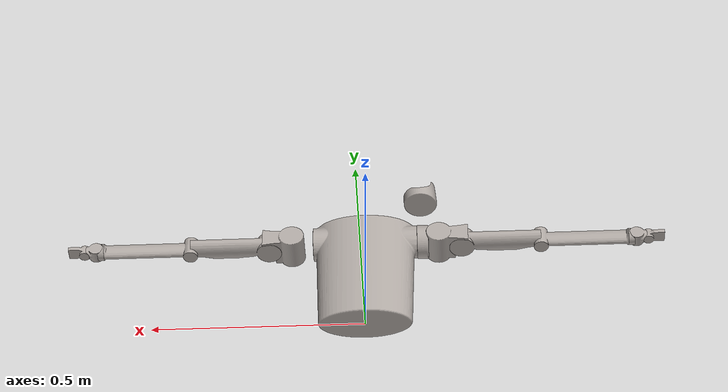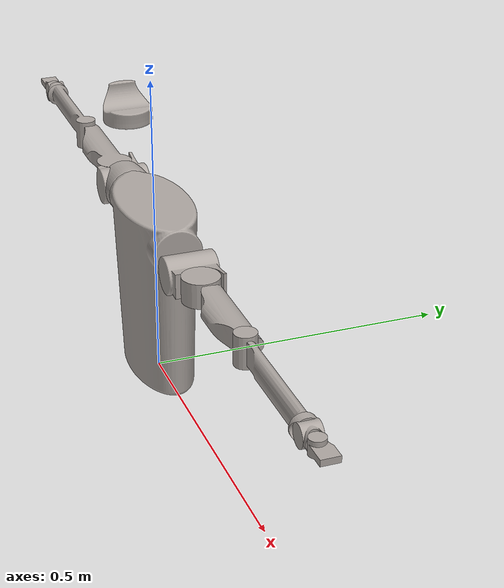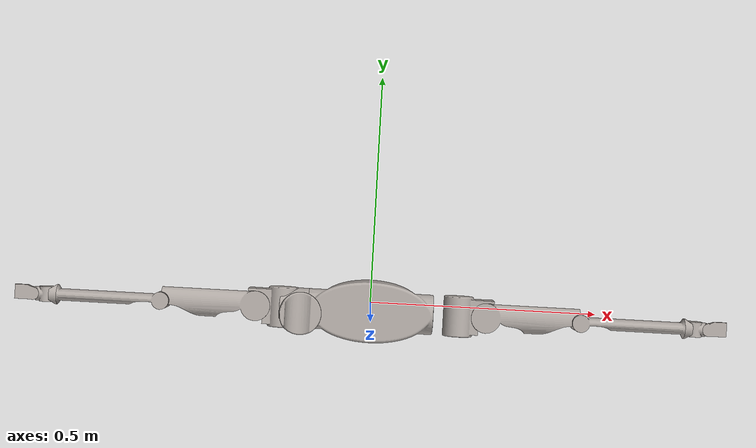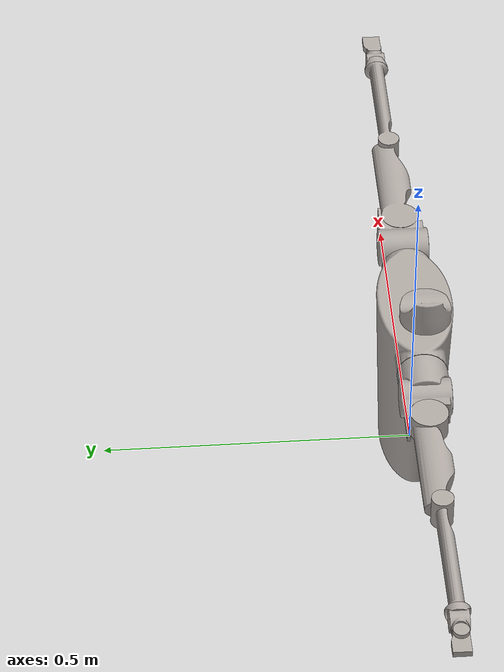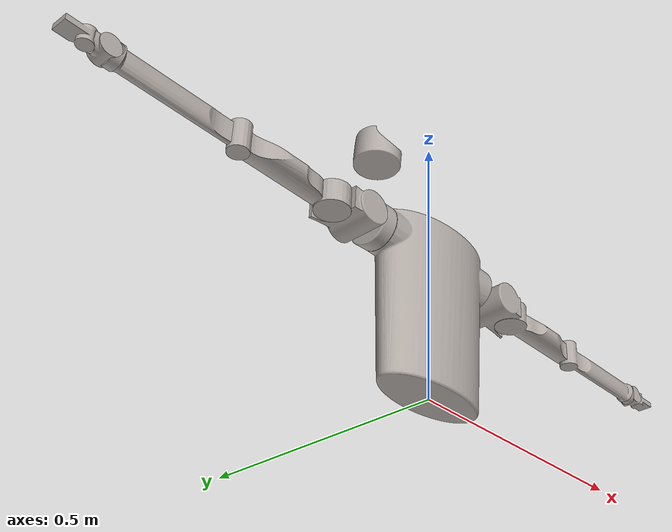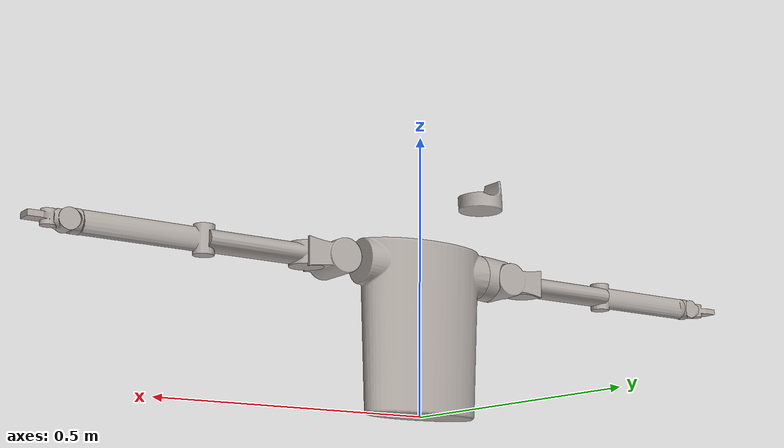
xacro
<?xml version="1.0"?>
<robot name="lita_converted" xmlns:xacro="http://www.ros.org/wiki/xacro">

  <!--fix the upper_body_link-->
  <link name="world"/>

  <joint name="fixed" type="fixed">
    <parent link="world"/>
    <child link="upper_body_link"/>
  </joint>

  <!--This is the robot describtion-->
  <link name="upper_body_link">
    <inertial>
      <origin xyz="-4.3975E-06 -1.1609E-08 0.15913" rpy="0 0 0" />
      <mass value="26.766" />
      <inertia
        ixx="10" ixy="10" ixz="10"
        iyy="10" iyz="10"
        izz="10" />
    </inertial>

    <visual>
      <origin xyz="0 0 0" rpy="0 0 0" />
      <geometry>
        <mesh filename="package://lita_converted/meshes/upper_body_link.STL" />
      </geometry>
      <material name="">
        <color rgba="0.68627 0.65882 0.63922 1" />
      </material>
    </visual>

    <collision>
      <origin xyz="0 0 0" rpy="0 0 0" />
      <geometry>
        <mesh filename="package://lita_converted/meshes/upper_body_link.STL" />
      </geometry>
    </collision>
  </link>

  <joint name="l_shoulder_roll" type="continuous">
    <origin xyz="0.125 0 0.26" rpy="0 -1.5708 0" />
    <parent link="upper_body_link" />
    <child link="l_shoulder_roll_link" />
    <axis xyz="0 0 -1" />
    <dynamics damping="0.7" />
  </joint>

  <link name="l_shoulder_roll_link">
    <inertial>
      <origin xyz="0.0033683 -7.6367E-09 -0.015946" rpy="0 0 0" />
      <mass value="0.63417" />
      <inertia
        ixx="0.000315"
        ixy="0"
        ixz="-5.2E-05"
        iyy="0.000373"
        iyz="0"
        izz="0.000525" />
    </inertial>

    <visual>
      <origin xyz="0.125 0 0.26" rpy="0 -1.5708 0" />
      <geometry>
        <mesh
          filename="package://lita_converted/meshes/l_shoulder_roll_link.STL" />
      </geometry>
      <material name="">
        <color rgba="0.68627 0.65882 0.63922 1" />
      </material>
    </visual>

    <collision>
      <origin xyz="0.125 0 0.26" rpy="0 -1.5708 0" />
      <geometry>
        <mesh
          filename="package://lita_converted/meshes/l_shoulder_roll_link.STL" />
      </geometry>
    </collision>
  </link>

  <link
    name="l_shoulder_pitch_link">
    <inertial>
      <origin
        xyz="0.0032993 5.9585E-10 -0.00098089"
        rpy="0 0 0" />
      <mass
        value="1.0724" />
      <inertia
        ixx="0.000841"
        ixy="0"
        ixz="-5.4E-05"
        iyy="0.000973"
        iyz="0"
        izz="0.000606" />
    </inertial>
    <visual>
      <origin
        xyz="0 0 0"
        rpy="0 0 0" />
      <geometry>
        <mesh
          filename="package://lita_converted/meshes/l_shoulder_pitch_link.STL" />
      </geometry>
      <material
        name="">
        <color
          rgba="0.68627 0.65882 0.63922 1" />
      </material>
    </visual>
    <collision>
      <origin
        xyz="0 0 0"
        rpy="0 0 0" />
      <geometry>
        <mesh
          filename="package://lita_converted/meshes/l_shoulder_pitch_link.STL" />
      </geometry>
    </collision>
  </link>
  <joint
    name="l_shoulder_pitch"
    type="revolute">
    <origin
      xyz="-0.0037133 0 -0.052049"
      rpy="1.5708 1.5708 0" />
    <parent
      link="l_shoulder_roll_link" />
    <child
      link="l_shoulder_pitch_link" />
    <axis
      xyz="0 0 -1" />
    <limit
      lower="-0.6981"
      upper="1.7104"
      effort="50000"
      velocity="500" />
    <calibration
      rising="1" />
    <dynamics
      damping="0.1"
      friction="0.1" />
    <safety_controller
      soft_upper="1.7"
      soft_lower="-0.69"
      k_position="1"
      k_velocity="1" />
  </joint>
  <link
    name="l_shoulder_yaw_link">
    <inertial>
      <origin
        xyz="0.065121 -0.0020967 1.7569E-07"
        rpy="0 0 0" />
      <mass
        value="1.3826" />
      <inertia
        ixx="0.000398"
        ixy="-0.000132"
        ixz="0"
        iyy="0.005026"
        iyz="0"
        izz="0.005143" />
    </inertial>
    <visual>
      <origin
        xyz="0 0 0"
        rpy="0 0 0" />
      <geometry>
        <mesh
          filename="package://lita_converted/meshes/l_shoulder_yaw_link.STL" />
      </geometry>
      <material
        name="">
        <color
          rgba="0.68627 0.65882 0.63922 1" />
      </material>
    </visual>
    <collision>
      <origin
        xyz="0 0 0"
        rpy="0 0 0" />
      <geometry>
        <mesh
          filename="package://lita_converted/meshes/l_shoulder_yaw_link.STL" />
      </geometry>
    </collision>
  </link>
  <joint
    name="l_shoulder_yaw"
    type="revolute">
    <origin
      xyz="0.055 0 0"
      rpy="1.5708 -4.1633E-17 -2.6021E-18" />
    <parent
      link="l_shoulder_pitch_link" />
    <child
      link="l_shoulder_yaw_link" />
    <axis
      xyz="0 0 1" />
    <limit
      lower="-0.1396"
      upper="1.6231"
      effort="50000"
      velocity="500" />
    <calibration
      rising="1" />
    <dynamics
      damping="0.1"
      friction="0.1" />
    <safety_controller
      soft_upper="1.61"
      soft_lower="-0.13"
      k_position="1"
      k_velocity="1" />
  </joint>
  <link
    name="l_elbow_link">
    <inertial>
      <origin
        xyz="0.088184 -0.0003499 -1.9687E-07"
        rpy="0 0 0" />
      <mass
        value="0.81599" />
      <inertia
        ixx="0.000143"
        ixy="1.5E-05"
        ixz="0"
        iyy="0.004114"
        iyz="0"
        izz="0.004046" />
    </inertial>
    <visual>
      <origin
        xyz="0 0 0"
        rpy="0 0 0" />
      <geometry>
        <mesh
          filename="package://lita_converted/meshes/l_elbow_link.STL" />
      </geometry>
      <material
        name="">
        <color
          rgba="0.68627 0.65882 0.63922 1" />
      </material>
    </visual>
    <collision>
      <origin
        xyz="0 0 0"
        rpy="0 0 0" />
      <geometry>
        <mesh
          filename="package://lita_converted/meshes/l_elbow_link.STL" />
      </geometry>
    </collision>
  </link>
  <joint
    name="l_elbow"
    type="revolute">
    <origin
      xyz="0.1903 0 0"
      rpy="-4.2858E-16 9.6277E-17 -4.1263E-32" />
    <parent
      link="l_shoulder_yaw_link" />
    <child
      link="l_elbow_link" />
    <axis
      xyz="0 0 1" />
    <limit
      lower="-0.7853"
      upper="2.4085"
      effort="50000"
      velocity="500" />
    <calibration
      rising="1" />
    <dynamics
      damping="0.1"
      friction="0.1" />
    <safety_controller
      soft_upper="2.4"
      soft_lower="-0.78"
      k_position="1"
      k_velocity="1" />
  </joint>
  <link
    name="l_wrist_roll_link">
    <inertial>
      <origin
        xyz="-1.4822E-09 1.5222E-08 -0.0042713"
        rpy="0 0 0" />
      <mass
        value="0.033212" />
      <inertia
        ixx="3E-06"
        ixy="0"
        ixz="0"
        iyy="6E-06"
        iyz="0"
        izz="8E-06" />
    </inertial>
    <visual>
      <origin
        xyz="0 0 0"
        rpy="0 0 0" />
      <geometry>
        <mesh
          filename="package://lita_converted/meshes/l_wrist_roll_link.STL" />
      </geometry>
      <material
        name="">
        <color
          rgba="0.68627 0.65882 0.63922 1" />
      </material>
    </visual>
    <collision>
      <origin
        xyz="0 0 0"
        rpy="0 0 0" />
      <geometry>
        <mesh
          filename="package://lita_converted/meshes/l_wrist_roll_link.STL" />
      </geometry>
    </collision>
  </link>
  <joint
    name="l_wrist_roll"
    type="continuous">
    <origin
      xyz="0.21 0 0"
      rpy="3.1416 1.5708 0" />
    <parent
      link="l_elbow_link" />
    <child
      link="l_wrist_roll_link" />
    <axis
      xyz="0 0 -1" />
    <limit
      effort="50000"
      velocity="500" />
    <calibration
      rising="1" />
    <dynamics
      damping="0.1"
      friction="0.1" />
    <safety_controller
      k_velocity="1" />
  </joint>
  <link
    name="l_wrist_pitch_link">
    <inertial>
      <origin
        xyz="0.0009785 -2.8101E-08 -1.4985E-08"
        rpy="0 0 0" />
      <mass
        value="0.13385" />
      <inertia
        ixx="2.1E-05"
        ixy="0"
        ixz="0"
        iyy="2.2E-05"
        iyz="0"
        izz="2.2E-05" />
    </inertial>
    <visual>
      <origin
        xyz="0 0 0"
        rpy="0 0 0" />
      <geometry>
        <mesh
          filename="package://lita_converted/meshes/l_wrist_pitch_link.STL" />
      </geometry>
      <material
        name="">
        <color
          rgba="0.68627 0.65882 0.63922 1" />
      </material>
    </visual>
    <collision>
      <origin
        xyz="0 0 0"
        rpy="0 0 0" />
      <geometry>
        <mesh
          filename="package://lita_converted/meshes/l_wrist_pitch_link.STL" />
      </geometry>
    </collision>
  </link>
  <joint
    name="l_wrist_pitch"
    type="revolute">
    <origin
      xyz="0 0 -0.02"
      rpy="1.5708 1.5708 0" />
    <parent
      link="l_wrist_roll_link" />
    <child
      link="l_wrist_pitch_link" />
    <axis
      xyz="0 0 -1" />
    <limit
      lower="-0.6981"
      upper="0.6981"
      effort="50000"
      velocity="500" />
    <calibration
      rising="1" />
    <dynamics
      damping="0.1"
      friction="0.1" />
    <safety_controller
      soft_upper="0.69"
      soft_lower="-0.69"
      k_position="1"
      k_velocity="1" />
  </joint>
  <link
    name="l_wrist_yaw_link">
    <inertial>
      <origin
        xyz="0.0096828 -0.0007914 2.2204E-16"
        rpy="0 0 0" />
      <mass
        value="0.089949" />
      <inertia
        ixx="8E-06"
        ixy="-1E-06"
        ixz="0"
        iyy="2E-05"
        iyz="0"
        izz="2.2E-05" />
    </inertial>
    <visual>
      <origin
        xyz="0 0 0"
        rpy="0 0 0" />
      <geometry>
        <mesh
          filename="package://lita_converted/meshes/l_wrist_yaw_link.STL" />
      </geometry>
      <material
        name="">
        <color
          rgba="0.68627 0.65882 0.63922 1" />
      </material>
    </visual>
    <collision>
      <origin
        xyz="0 0 0"
        rpy="0 0 0" />
      <geometry>
        <mesh
          filename="package://lita_converted/meshes/l_wrist_yaw_link.STL" />
      </geometry>
    </collision>
  </link>
  <joint
    name="l_wrist_yaw"
    type="revolute">
    <origin
      xyz="0.028 0 0"
      rpy="1.5708 -1.0276E-16 -6.9285E-31" />
    <parent
      link="l_wrist_pitch_link" />
    <child
      link="l_wrist_yaw_link" />
    <axis
      xyz="0 0 1" />
    <limit
      lower="-0.3141"
      upper="0.3141"
      effort="50000"
      velocity="500" />
    <calibration
      rising="1" />
    <dynamics
      damping="0.1"
      friction="0.1" />
    <safety_controller
      soft_upper="0.31"
      soft_lower="-0.31"
      k_position="1"
      k_velocity="1" />
  </joint>
  <link
    name="r_shoulder_roll_link">
    <inertial>
      <origin
        xyz="0.0033683 7.6367E-09 0.015946"
        rpy="0 0 0" />
      <mass
        value="0.63417" />
      <inertia
        ixx="0.000315"
        ixy="0"
        ixz="5.2E-05"
        iyy="0.000373"
        iyz="0"
        izz="0.000525" />
    </inertial>
    <visual>
      <origin
        xyz="0 0 0"
        rpy="0 0 0" />
      <geometry>
        <mesh
          filename="package://lita_converted/meshes/r_shoulder_roll_link.STL" />
      </geometry>
      <material
        name="">
        <color
          rgba="0.68627 0.65882 0.63922 1" />
      </material>
    </visual>
    <collision>
      <origin
        xyz="0 0 0"
        rpy="0 0 0" />
      <geometry>
        <mesh
          filename="package://lita_converted/meshes/r_shoulder_roll_link.STL" />
      </geometry>
    </collision>
  </link>
  <joint
    name="r_shoulder_roll"
    type="continuous">
    <origin
      xyz="-0.125 0 0.26"
      rpy="0 -1.5708 0" />
    <parent
      link="upper_body_link" />
    <child
      link="r_shoulder_roll_link" />
    <axis
      xyz="0 0 -1" />
    <limit
      effort="50000"
      velocity="500" />
    <calibration
      rising="1" />
    <dynamics
      damping="0.1"
      friction="0.1" />
    <safety_controller
      k_velocity="1" />
  </joint>
  <link
    name="r_shoulder_pitch_link">
    <inertial>
      <origin
        xyz="0.0032993 -5.9585E-10 0.00098089"
        rpy="0 0 0" />
      <mass
        value="1.0724" />
      <inertia
        ixx="0.000841"
        ixy="0"
        ixz="5.4E-05"
        iyy="0.000973"
        iyz="0"
        izz="0.000606" />
    </inertial>
    <visual>
      <origin
        xyz="0 0 0"
        rpy="0 0 0" />
      <geometry>
        <mesh
          filename="package://lita_converted/meshes/r_shoulder_pitch_link.STL" />
      </geometry>
      <material
        name="">
        <color
          rgba="0.68627 0.65882 0.63922 1" />
      </material>
    </visual>
    <collision>
      <origin
        xyz="0 0 0"
        rpy="0 0 0" />
      <geometry>
        <mesh
          filename="package://lita_converted/meshes/r_shoulder_pitch_link.STL" />
      </geometry>
    </collision>
  </link>
  <joint
    name="r_shoulder_pitch"
    type="revolute">
    <origin
      xyz="-0.0037133 0 0.052049"
      rpy="-1.5708 -1.5708 0" />
    <parent
      link="r_shoulder_roll_link" />
    <child
      link="r_shoulder_pitch_link" />
    <axis
      xyz="0 0 -1" />
    <limit
      lower="-0.6981"
      upper="1.7104"
      effort="50000"
      velocity="500" />
    <calibration
      rising="1" />
    <dynamics
      damping="0.1"
      friction="0.1" />
    <safety_controller
      soft_upper="1.7"
      soft_lower="-0.69"
      k_position="1"
      k_velocity="1" />
  </joint>
  <link
    name="r_shoulder_yaw_link">
    <inertial>
      <origin
        xyz="0.065121 -0.0020967 1.7569E-07"
        rpy="0 0 0" />
      <mass
        value="1.3826" />
      <inertia
        ixx="0.000398"
        ixy="-0.000132"
        ixz="0"
        iyy="0.005026"
        iyz="0"
        izz="0.005143" />
    </inertial>
    <visual>
      <origin
        xyz="0 0 0"
        rpy="0 0 0" />
      <geometry>
        <mesh
          filename="package://lita_converted/meshes/r_shoulder_yaw_link.STL" />
      </geometry>
      <material
        name="">
        <color
          rgba="0.68627 0.65882 0.63922 1" />
      </material>
    </visual>
    <collision>
      <origin
        xyz="0 0 0"
        rpy="0 0 0" />
      <geometry>
        <mesh
          filename="package://lita_converted/meshes/r_shoulder_yaw_link.STL" />
      </geometry>
    </collision>
  </link>
  <joint
    name="r_shoulder_yaw"
    type="revolute">
    <origin
      xyz="0.055 0 0"
      rpy="-1.5708 3.2819E-17 -4.3368E-18" />
    <parent
      link="r_shoulder_pitch_link" />
    <child
      link="r_shoulder_yaw_link" />
    <axis
      xyz="0 0 1" />
    <limit
      lower="-0.1396"
      upper="1.6231"
      effort="50000"
      velocity="500" />
    <calibration
      rising="1" />
    <dynamics
      damping="0.1"
      friction="0.1" />
    <safety_controller
      soft_upper="1.61"
      soft_lower="-0.13"
      k_velocity="0" />
  </joint>
  <link
    name="r_elbow_link">
    <inertial>
      <origin
        xyz="0.088184 -0.0003499 -1.9687E-07"
        rpy="0 0 0" />
      <mass
        value="0.81599" />
      <inertia
        ixx="0.000143"
        ixy="1.5E-05"
        ixz="0"
        iyy="0.004114"
        iyz="0"
        izz="0.004046" />
    </inertial>
    <visual>
      <origin
        xyz="0 0 0"
        rpy="0 0 0" />
      <geometry>
        <mesh
          filename="package://lita_converted/meshes/r_elbow_link.STL" />
      </geometry>
      <material
        name="">
        <color
          rgba="0.68627 0.65882 0.63922 1" />
      </material>
    </visual>
    <collision>
      <origin
        xyz="0 0 0"
        rpy="0 0 0" />
      <geometry>
        <mesh
          filename="package://lita_converted/meshes/r_elbow_link.STL" />
      </geometry>
    </collision>
  </link>
  <joint
    name="r_elbow"
    type="revolute">
    <origin
      xyz="0.1903 0 0"
      rpy="1.2818E-16 -4.3368E-18 -2.8339E-19" />
    <parent
      link="r_shoulder_yaw_link" />
    <child
      link="r_elbow_link" />
    <axis
      xyz="0 0 1" />
    <limit
      lower="-0.7853"
      upper="2.4085"
      effort="50000"
      velocity="500" />
    <calibration
      rising="1" />
    <dynamics
      damping="0.1"
      friction="0.1" />
    <safety_controller
      soft_upper="2.4"
      soft_lower="-0.78"
      k_position="1"
      k_velocity="1" />
  </joint>
  <link
    name="r_wrist_roll_link">
    <inertial>
      <origin
        xyz="-1.4822E-09 -1.5222E-08 0.0042713"
        rpy="0 0 0" />
      <mass
        value="0.033212" />
      <inertia
        ixx="3E-06"
        ixy="0"
        ixz="0"
        iyy="6E-06"
        iyz="0"
        izz="8E-06" />
    </inertial>
    <visual>
      <origin
        xyz="0 0 0"
        rpy="0 0 0" />
      <geometry>
        <mesh
          filename="package://lita_converted/meshes/r_wrist_roll_link.STL" />
      </geometry>
      <material
        name="">
        <color
          rgba="0.68627 0.65882 0.63922 1" />
      </material>
    </visual>
    <collision>
      <origin
        xyz="0 0 0"
        rpy="0 0 0" />
      <geometry>
        <mesh
          filename="package://lita_converted/meshes/r_wrist_roll_link.STL" />
      </geometry>
    </collision>
  </link>
  <joint
    name="r_wrist_roll"
    type="continuous">
    <origin
      xyz="0.21 0 0"
      rpy="0 1.5708 0" />
    <parent
      link="r_elbow_link" />
    <child
      link="r_wrist_roll_link" />
    <axis
      xyz="0 0 -1" />
    <limit
      effort="50000"
      velocity="500" />
    <calibration
      rising="1" />
    <dynamics
      damping="0.1"
      friction="0.1" />
    <safety_controller
      k_velocity="1" />
  </joint>
  <link
    name="r_wrist_pitch_link">
    <inertial>
      <origin
        xyz="0.0009785 -2.8101E-08 -1.4985E-08"
        rpy="0 0 0" />
      <mass
        value="0.13385" />
      <inertia
        ixx="2.1E-05"
        ixy="0"
        ixz="0"
        iyy="2.2E-05"
        iyz="0"
        izz="2.2E-05" />
    </inertial>
    <visual>
      <origin
        xyz="0 0 0"
        rpy="0 0 0" />
      <geometry>
        <mesh
          filename="package://lita_converted/meshes/r_wrist_pitch_link.STL" />
      </geometry>
      <material
        name="">
        <color
          rgba="0.68627 0.65882 0.63922 1" />
      </material>
    </visual>
    <collision>
      <origin
        xyz="0 0 0"
        rpy="0 0 0" />
      <geometry>
        <mesh
          filename="package://lita_converted/meshes/r_wrist_pitch_link.STL" />
      </geometry>
    </collision>
  </link>
  <joint
    name="r_wrist_pitch"
    type="revolute">
    <origin
      xyz="0 0 0.02"
      rpy="1.5708 -1.5708 0" />
    <parent
      link="r_wrist_roll_link" />
    <child
      link="r_wrist_pitch_link" />
    <axis
      xyz="0 0 -1" />
    <limit
      lower="-0.6981"
      upper="0.6981"
      effort="50000"
      velocity="500" />
    <calibration
      rising="1" />
    <dynamics
      damping="0.1"
      friction="0.1" />
    <safety_controller
      soft_upper="0.69"
      soft_lower="-0.69"
      k_position="1"
      k_velocity="1" />
  </joint>
  <link
    name="r_wrist_yaw_link">
    <inertial>
      <origin
        xyz="0.0096828 -0.0007914 0"
        rpy="0 0 0" />
      <mass
        value="0.089949" />
      <inertia
        ixx="8E-06"
        ixy="-1E-06"
        ixz="0"
        iyy="2E-05"
        iyz="0"
        izz="2.2E-05" />
    </inertial>
    <visual>
      <origin
        xyz="0 0 0"
        rpy="0 0 0" />
      <geometry>
        <mesh
          filename="package://lita_converted/meshes/r_wrist_yaw_link.STL" />
      </geometry>
      <material
        name="">
        <color
          rgba="0.68627 0.65882 0.63922 1" />
      </material>
    </visual>
    <collision>
      <origin
        xyz="0 0 0"
        rpy="0 0 0" />
      <geometry>
        <mesh
          filename="package://lita_converted/meshes/r_wrist_yaw_link.STL" />
      </geometry>
    </collision>
  </link>
  <joint
    name="r_wrist_yaw"
    type="revolute">
    <origin
      xyz="0.028 0 0"
      rpy="-1.5708 3.3944E-20 8.6736E-18" />
    <parent
      link="r_wrist_pitch_link" />
    <child
      link="r_wrist_yaw_link" />
    <axis
      xyz="0 0 1" />
    <limit
      lower="-0.3141"
      upper="0.3141"
      effort="50000"
      velocity="500" />
    <calibration
      rising="1" />
    <dynamics
      damping="0.1"
      friction="0.1" />
    <safety_controller
      soft_upper="0.31"
      soft_lower="-0.31"
      k_position="1"
      k_velocity="1" />
  </joint>
</robot>
